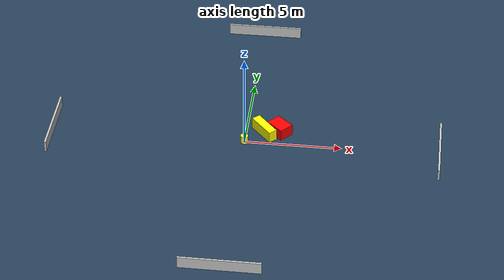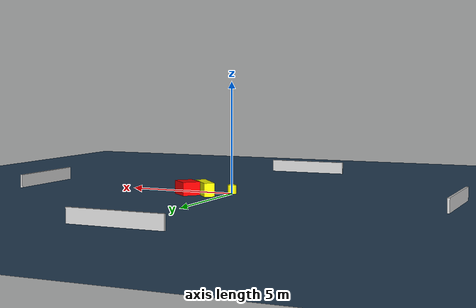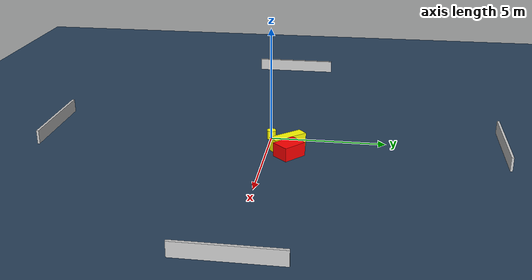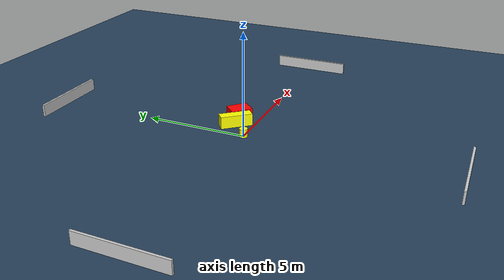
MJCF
<?xml version="1.0" ?>
<mujoco model="generated_environment">
  <option timestep="0.01" integrator="RK4" cone="elliptic"/>
  <default>
    <geom density="1"/>
  </default>
  <asset>
    <texture builtin="gradient" height="3072" name="skybox" rgb1="0.3 0.5 0.7" rgb2="0 0 0" type="skybox" width="512"/>
    <texture builtin="checker" height="300" name="groundplane" rgb1="0.2 0.3 0.4" rgb2="0.1 0.2 0.3" type="2d" width="300"/>
    <material name="groundplane" reflectance="0.2" texrepeat="5 5" texture="groundplane"/>
  </asset>
  <worldbody>
    <light dir="0 0 -1" directional="true" pos="0 0 1.5"/>
    <geom condim="3" friction="0.5 0.005 0.001" material="groundplane" name="floor" pos="0 0 0" size="0 0 0.05" type="plane"/>
    <body name="walls">
      <geom name="wall_1" condim="4" pos="-10.0 0.0 0.3" rgba="0.800000011920929 0.800000011920929 0.800000011920929 1.0" size="0.05 2.0 0.3" type="box"/>
      <geom name="wall_2" condim="4" pos="10.0 0.0 0.3" rgba="0.800000011920929 0.800000011920929 0.800000011920929 1.0" size="0.05 2.0 0.3" type="box"/>
      <geom name="wall_3" condim="4" pos="0.0 -10.0 0.3" rgba="0.800000011920929 0.800000011920929 0.800000011920929 1.0" size="2.0 0.05 0.3" type="box"/>
      <geom name="wall_4" condim="4" pos="0.0 10.0 0.3" rgba="0.800000011920929 0.800000011920929 0.800000011920929 1.0" size="2.0 0.05 0.3" type="box"/>
    </body>
    <body name="robot">
      <joint name="joint_x" type="slide" pos="0 0 0" axis="1 0 0"/>
      <joint name="joint_y" type="slide" pos="0 0 0" axis="0 1 0"/>
      <geom name="robot" type="cylinder" pos="0.0 0.0 0.2" size="0.2 0.2 0.0" mass="5.0" friction="1.0 0.005 0.0001" condim="4" rgba="1.0 1.0 0.0 1.0"/>
    </body>
    <body name="obstacle_1_movable">
      <geom name="obstacle_1_movable" condim="4" pos="0.9403294257350533 0.8360769176154345 0.3" euler="0 0 310.5525108603112" friction="0.0 0.005 0.001" rgba="1.0 1.0 0.0 1.0" size="0.7812662853147014 0.23587148160345045 0.3" type="box" mass="0.1"/>
      <joint type="free"/>
    </body>
    <body name="obstacle_2_static">
      <geom name="obstacle_2_static" condim="4" pos="1.7304115391605417 0.9900400304549585 0.3" euler="0 0 317.6131135622552" friction="0.0 0.005 0.001" rgba="1.0 0.0 0.0 1.0" size="0.5293530856442402 0.4004494501940094 0.3" type="box"/>
    </body>
  </worldbody>
  <actuator>
    <motor name="actuator_x" joint="joint_x" gear="1" ctrlrange="-1 1"/>
    <motor name="actuator_y" joint="joint_y" gear="1" ctrlrange="-1 1"/>
  </actuator>
</mujoco>
